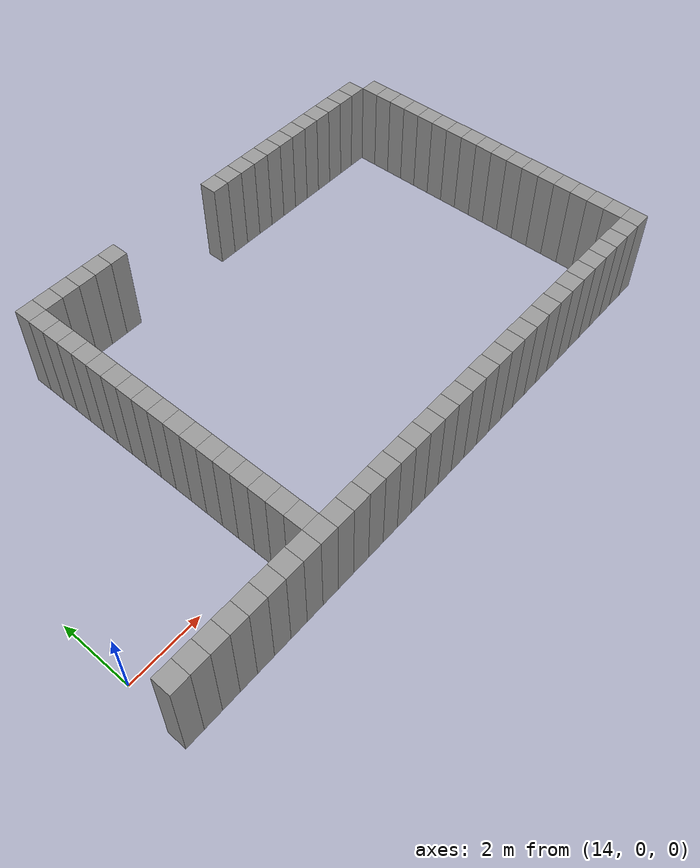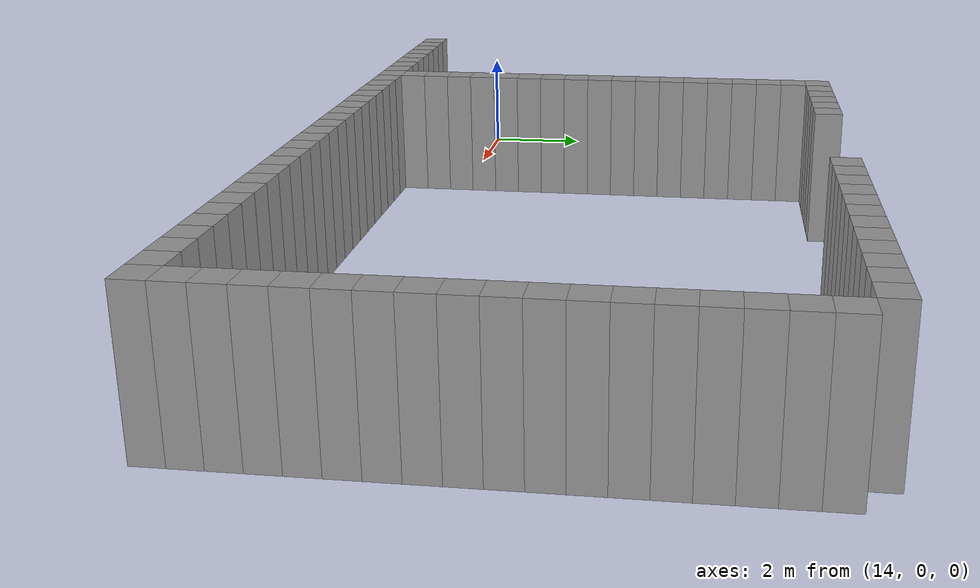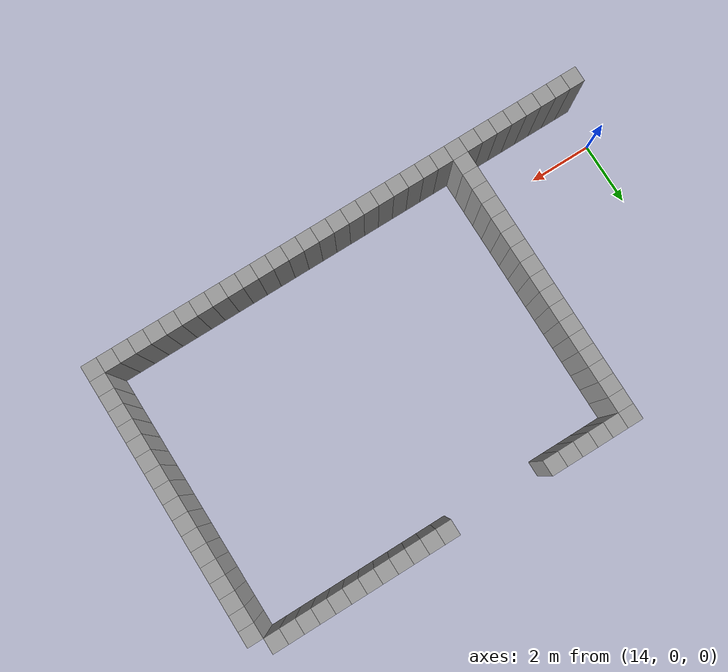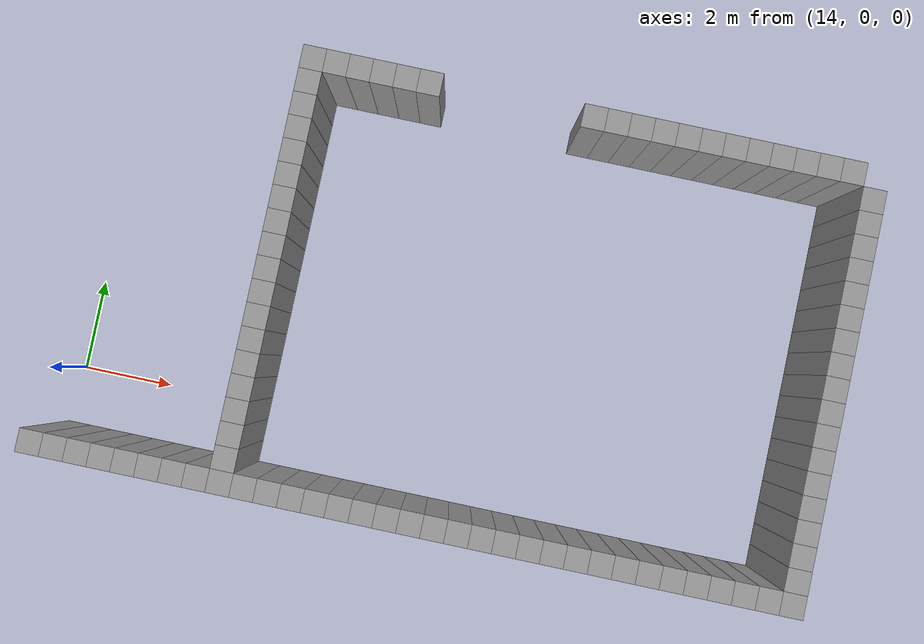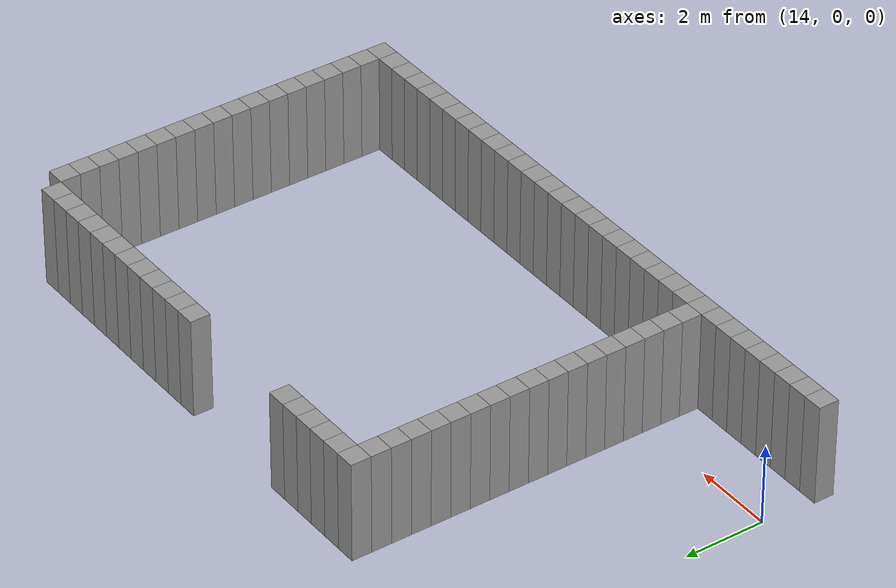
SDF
<sdf version="1.7">
 <model name="image1">
  <pose>-0.375 -1.54 0 0 -0 0</pose>
  <link name="Wall_256">
   <collision name="Wall_256_Collision">
    <geometry><box><size>0.5 0.5 2.5</size></box></geometry>
    <pose>0 0 1.25 0 -0 0</pose>
   </collision>
   <visual name="Wall_256_Visual">
    <pose>0 0 1.25 0 -0 0</pose>
    <geometry><box><size>0.5 0.5 2.5</size></box></geometry>
    <material>
     <script><uri>file://media/materials/scripts/gazebo.material</uri><name>Gazebo/Grey</name></script>
     <ambient>1 1 1 1</ambient>
    </material>
    <meta><layer>0</layer></meta>
   </visual>
   <pose>14.5 0.0 0 0 -0 0</pose>
  </link>
  <link name="Wall_259">
   <collision name="Wall_259_Collision">
    <geometry><box><size>0.5 0.5 2.5</size></box></geometry>
    <pose>0 0 1.25 0 -0 0</pose>
   </collision>
   <visual name="Wall_259_Visual">
    <pose>0 0 1.25 0 -0 0</pose>
    <geometry><box><size>0.5 0.5 2.5</size></box></geometry>
    <material>
     <script><uri>file://media/materials/scripts/gazebo.material</uri><name>Gazebo/Grey</name></script>
     <ambient>1 1 1 1</ambient>
    </material>
    <meta><layer>0</layer></meta>
   </visual>
   <pose>15.0 0.0 0 0 -0 0</pose>
  </link>
  <link name="Wall_262">
   <collision name="Wall_262_Collision">
    <geometry><box><size>0.5 0.5 2.5</size></box></geometry>
    <pose>0 0 1.25 0 -0 0</pose>
   </collision>
   <visual name="Wall_262_Visual">
    <pose>0 0 1.25 0 -0 0</pose>
    <geometry><box><size>0.5 0.5 2.5</size></box></geometry>
    <material>
     <script><uri>file://media/materials/scripts/gazebo.material</uri><name>Gazebo/Grey</name></script>
     <ambient>1 1 1 1</ambient>
    </material>
    <meta><layer>0</layer></meta>
   </visual>
   <pose>15.5 0.0 0 0 -0 0</pose>
  </link>
  <link name="Wall_265">
   <collision name="Wall_265_Collision">
    <geometry><box><size>0.5 0.5 2.5</size></box></geometry>
    <pose>0 0 1.25 0 -0 0</pose>
   </collision>
   <visual name="Wall_265_Visual">
    <pose>0 0 1.25 0 -0 0</pose>
    <geometry><box><size>0.5 0.5 2.5</size></box></geometry>
    <material>
     <script><uri>file://media/materials/scripts/gazebo.material</uri><name>Gazebo/Grey</name></script>
     <ambient>1 1 1 1</ambient>
    </material>
    <meta><layer>0</layer></meta>
   </visual>
   <pose>16.0 0.0 0 0 -0 0</pose>
  </link>
  <link name="Wall_283">
   <collision name="Wall_283_Collision">
    <geometry><box><size>0.5 0.5 2.5</size></box></geometry>
    <pose>0 0 1.25 0 -0 0</pose>
   </collision>
   <visual name="Wall_283_Visual">
    <pose>0 0 1.25 0 -0 0</pose>
    <geometry><box><size>0.5 0.5 2.5</size></box></geometry>
    <material>
     <script><uri>file://media/materials/scripts/gazebo.material</uri><name>Gazebo/Grey</name></script>
     <ambient>1 1 1 1</ambient>
    </material>
    <meta><layer>0</layer></meta>
   </visual>
   <pose>16.5 0.0 0 0 -0 0</pose>
  </link>
  <link name="Wall_287">
   <collision name="Wall_287_Collision">
    <geometry><box><size>0.5 0.5 2.5</size></box></geometry>
    <pose>0 0 1.25 0 -0 0</pose>
   </collision>
   <visual name="Wall_287_Visual">
    <pose>0 0 1.25 0 -0 0</pose>
    <geometry><box><size>0.5 0.5 2.5</size></box></geometry>
    <material>
     <script><uri>file://media/materials/scripts/gazebo.material</uri><name>Gazebo/Grey</name></script>
     <ambient>1 1 1 1</ambient>
    </material>
    <meta><layer>0</layer></meta>
   </visual>
   <pose>17.0 0.0 0 0 -0 0</pose>
  </link>
  <link name="Wall_291">
   <collision name="Wall_291_Collision">
    <geometry><box><size>0.5 0.5 2.5</size></box></geometry>
    <pose>0 0 1.25 0 -0 0</pose>
   </collision>
   <visual name="Wall_291_Visual">
    <pose>0 0 1.25 0 -0 0</pose>
    <geometry><box><size>0.5 0.5 2.5</size></box></geometry>
    <material>
     <script><uri>file://media/materials/scripts/gazebo.material</uri><name>Gazebo/Grey</name></script>
     <ambient>1 1 1 1</ambient>
    </material>
    <meta><layer>0</layer></meta>
   </visual>
   <pose>17.5 0.0 0 0 -0 0</pose>
  </link>
  <link name="Wall_295">
   <collision name="Wall_295_Collision">
    <geometry><box><size>0.5 0.5 2.5</size></box></geometry>
    <pose>0 0 1.25 0 -0 0</pose>
   </collision>
   <visual name="Wall_295_Visual">
    <pose>0 0 1.25 0 -0 0</pose>
    <geometry><box><size>0.5 0.5 2.5</size></box></geometry>
    <material>
     <script><uri>file://media/materials/scripts/gazebo.material</uri><name>Gazebo/Grey</name></script>
     <ambient>1 1 1 1</ambient>
    </material>
    <meta><layer>0</layer></meta>
   </visual>
   <pose>18.0 0.0 0 0 -0 0</pose>
  </link>
  <link name="Wall_299">
   <collision name="Wall_299_Collision">
    <geometry><box><size>0.5 0.5 2.5</size></box></geometry>
    <pose>0 0 1.25 0 -0 0</pose>
   </collision>
   <visual name="Wall_299_Visual">
    <pose>0 0 1.25 0 -0 0</pose>
    <geometry><box><size>0.5 0.5 2.5</size></box></geometry>
    <material>
     <script><uri>file://media/materials/scripts/gazebo.material</uri><name>Gazebo/Grey</name></script>
     <ambient>1 1 1 1</ambient>
    </material>
    <meta><layer>0</layer></meta>
   </visual>
   <pose>18.5 0.0 0 0 -0 0</pose>
  </link>
  <link name="Wall_300">
   <collision name="Wall_300_Collision">
    <geometry><box><size>0.5 0.5 2.5</size></box></geometry>
    <pose>0 0 1.25 0 -0 0</pose>
   </collision>
   <visual name="Wall_300_Visual">
    <pose>0 0 1.25 0 -0 0</pose>
    <geometry><box><size>0.5 0.5 2.5</size></box></geometry>
    <material>
     <script><uri>file://media/materials/scripts/gazebo.material</uri><name>Gazebo/Grey</name></script>
     <ambient>1 1 1 1</ambient>
    </material>
    <meta><layer>0</layer></meta>
   </visual>
   <pose>18.5 0.5 0 0 -0 0</pose>
  </link>
  <link name="Wall_301">
   <collision name="Wall_301_Collision">
    <geometry><box><size>0.5 0.5 2.5</size></box></geometry>
    <pose>0 0 1.25 0 -0 0</pose>
   </collision>
   <visual name="Wall_301_Visual">
    <pose>0 0 1.25 0 -0 0</pose>
    <geometry><box><size>0.5 0.5 2.5</size></box></geometry>
    <material>
     <script><uri>file://media/materials/scripts/gazebo.material</uri><name>Gazebo/Grey</name></script>
     <ambient>1 1 1 1</ambient>
    </material>
    <meta><layer>0</layer></meta>
   </visual>
   <pose>18.5 1.0 0 0 -0 0</pose>
  </link>
  <link name="Wall_302">
   <collision name="Wall_302_Collision">
    <geometry><box><size>0.5 0.5 2.5</size></box></geometry>
    <pose>0 0 1.25 0 -0 0</pose>
   </collision>
   <visual name="Wall_302_Visual">
    <pose>0 0 1.25 0 -0 0</pose>
    <geometry><box><size>0.5 0.5 2.5</size></box></geometry>
    <material>
     <script><uri>file://media/materials/scripts/gazebo.material</uri><name>Gazebo/Grey</name></script>
     <ambient>1 1 1 1</ambient>
    </material>
    <meta><layer>0</layer></meta>
   </visual>
   <pose>18.5 1.5 0 0 -0 0</pose>
  </link>
  <link name="Wall_303">
   <collision name="Wall_303_Collision">
    <geometry><box><size>0.5 0.5 2.5</size></box></geometry>
    <pose>0 0 1.25 0 -0 0</pose>
   </collision>
   <visual name="Wall_303_Visual">
    <pose>0 0 1.25 0 -0 0</pose>
    <geometry><box><size>0.5 0.5 2.5</size></box></geometry>
    <material>
     <script><uri>file://media/materials/scripts/gazebo.material</uri><name>Gazebo/Grey</name></script>
     <ambient>1 1 1 1</ambient>
    </material>
    <meta><layer>0</layer></meta>
   </visual>
   <pose>18.5 2.0 0 0 -0 0</pose>
  </link>
  <link name="Wall_304">
   <collision name="Wall_304_Collision">
    <geometry><box><size>0.5 0.5 2.5</size></box></geometry>
    <pose>0 0 1.25 0 -0 0</pose>
   </collision>
   <visual name="Wall_304_Visual">
    <pose>0 0 1.25 0 -0 0</pose>
    <geometry><box><size>0.5 0.5 2.5</size></box></geometry>
    <material>
     <script><uri>file://media/materials/scripts/gazebo.material</uri><name>Gazebo/Grey</name></script>
     <ambient>1 1 1 1</ambient>
    </material>
    <meta><layer>0</layer></meta>
   </visual>
   <pose>18.5 2.5 0 0 -0 0</pose>
  </link>
  <link name="Wall_305">
   <collision name="Wall_305_Collision">
    <geometry><box><size>0.5 0.5 2.5</size></box></geometry>
    <pose>0 0 1.25 0 -0 0</pose>
   </collision>
   <visual name="Wall_305_Visual">
    <pose>0 0 1.25 0 -0 0</pose>
    <geometry><box><size>0.5 0.5 2.5</size></box></geometry>
    <material>
     <script><uri>file://media/materials/scripts/gazebo.material</uri><name>Gazebo/Grey</name></script>
     <ambient>1 1 1 1</ambient>
    </material>
    <meta><layer>0</layer></meta>
   </visual>
   <pose>18.5 3.0 0 0 -0 0</pose>
  </link>
  <link name="Wall_306">
   <collision name="Wall_306_Collision">
    <geometry><box><size>0.5 0.5 2.5</size></box></geometry>
    <pose>0 0 1.25 0 -0 0</pose>
   </collision>
   <visual name="Wall_306_Visual">
    <pose>0 0 1.25 0 -0 0</pose>
    <geometry><box><size>0.5 0.5 2.5</size></box></geometry>
    <material>
     <script><uri>file://media/materials/scripts/gazebo.material</uri><name>Gazebo/Grey</name></script>
     <ambient>1 1 1 1</ambient>
    </material>
    <meta><layer>0</layer></meta>
   </visual>
   <pose>18.5 3.5 0 0 -0 0</pose>
  </link>
  <link name="Wall_307">
   <collision name="Wall_307_Collision">
    <geometry><box><size>0.5 0.5 2.5</size></box></geometry>
    <pose>0 0 1.25 0 -0 0</pose>
   </collision>
   <visual name="Wall_307_Visual">
    <pose>0 0 1.25 0 -0 0</pose>
    <geometry><box><size>0.5 0.5 2.5</size></box></geometry>
    <material>
     <script><uri>file://media/materials/scripts/gazebo.material</uri><name>Gazebo/Grey</name></script>
     <ambient>1 1 1 1</ambient>
    </material>
    <meta><layer>0</layer></meta>
   </visual>
   <pose>18.5 4.0 0 0 -0 0</pose>
  </link>
  <link name="Wall_308">
   <collision name="Wall_308_Collision">
    <geometry><box><size>0.5 0.5 2.5</size></box></geometry>
    <pose>0 0 1.25 0 -0 0</pose>
   </collision>
   <visual name="Wall_308_Visual">
    <pose>0 0 1.25 0 -0 0</pose>
    <geometry><box><size>0.5 0.5 2.5</size></box></geometry>
    <material>
     <script><uri>file://media/materials/scripts/gazebo.material</uri><name>Gazebo/Grey</name></script>
     <ambient>1 1 1 1</ambient>
    </material>
    <meta><layer>0</layer></meta>
   </visual>
   <pose>18.5 4.5 0 0 -0 0</pose>
  </link>
  <link name="Wall_309">
   <collision name="Wall_309_Collision">
    <geometry><box><size>0.5 0.5 2.5</size></box></geometry>
    <pose>0 0 1.25 0 -0 0</pose>
   </collision>
   <visual name="Wall_309_Visual">
    <pose>0 0 1.25 0 -0 0</pose>
    <geometry><box><size>0.5 0.5 2.5</size></box></geometry>
    <material>
     <script><uri>file://media/materials/scripts/gazebo.material</uri><name>Gazebo/Grey</name></script>
     <ambient>1 1 1 1</ambient>
    </material>
    <meta><layer>0</layer></meta>
   </visual>
   <pose>18.5 5.0 0 0 -0 0</pose>
  </link>
  <link name="Wall_310">
   <collision name="Wall_310_Collision">
    <geometry><box><size>0.5 0.5 2.5</size></box></geometry>
    <pose>0 0 1.25 0 -0 0</pose>
   </collision>
   <visual name="Wall_310_Visual">
    <pose>0 0 1.25 0 -0 0</pose>
    <geometry><box><size>0.5 0.5 2.5</size></box></geometry>
    <material>
     <script><uri>file://media/materials/scripts/gazebo.material</uri><name>Gazebo/Grey</name></script>
     <ambient>1 1 1 1</ambient>
    </material>
    <meta><layer>0</layer></meta>
   </visual>
   <pose>18.5 5.5 0 0 -0 0</pose>
  </link>
  <link name="Wall_311">
   <collision name="Wall_311_Collision">
    <geometry><box><size>0.5 0.5 2.5</size></box></geometry>
    <pose>0 0 1.25 0 -0 0</pose>
   </collision>
   <visual name="Wall_311_Visual">
    <pose>0 0 1.25 0 -0 0</pose>
    <geometry><box><size>0.5 0.5 2.5</size></box></geometry>
    <material>
     <script><uri>file://media/materials/scripts/gazebo.material</uri><name>Gazebo/Grey</name></script>
     <ambient>1 1 1 1</ambient>
    </material>
    <meta><layer>0</layer></meta>
   </visual>
   <pose>18.5 6.0 0 0 -0 0</pose>
  </link>
  <link name="Wall_312">
   <collision name="Wall_312_Collision">
    <geometry><box><size>0.5 0.5 2.5</size></box></geometry>
    <pose>0 0 1.25 0 -0 0</pose>
   </collision>
   <visual name="Wall_312_Visual">
    <pose>0 0 1.25 0 -0 0</pose>
    <geometry><box><size>0.5 0.5 2.5</size></box></geometry>
    <material>
     <script><uri>file://media/materials/scripts/gazebo.material</uri><name>Gazebo/Grey</name></script>
     <ambient>1 1 1 1</ambient>
    </material>
    <meta><layer>0</layer></meta>
   </visual>
   <pose>18.5 6.5 0 0 -0 0</pose>
  </link>
  <link name="Wall_313">
   <collision name="Wall_313_Collision">
    <geometry><box><size>0.5 0.5 2.5</size></box></geometry>
    <pose>0 0 1.25 0 -0 0</pose>
   </collision>
   <visual name="Wall_313_Visual">
    <pose>0 0 1.25 0 -0 0</pose>
    <geometry><box><size>0.5 0.5 2.5</size></box></geometry>
    <material>
     <script><uri>file://media/materials/scripts/gazebo.material</uri><name>Gazebo/Grey</name></script>
     <ambient>1 1 1 1</ambient>
    </material>
    <meta><layer>0</layer></meta>
   </visual>
   <pose>18.5 7.0 0 0 -0 0</pose>
  </link>
  <link name="Wall_314">
   <collision name="Wall_314_Collision">
    <geometry><box><size>0.5 0.5 2.5</size></box></geometry>
    <pose>0 0 1.25 0 -0 0</pose>
   </collision>
   <visual name="Wall_314_Visual">
    <pose>0 0 1.25 0 -0 0</pose>
    <geometry><box><size>0.5 0.5 2.5</size></box></geometry>
    <material>
     <script><uri>file://media/materials/scripts/gazebo.material</uri><name>Gazebo/Grey</name></script>
     <ambient>1 1 1 1</ambient>
    </material>
    <meta><layer>0</layer></meta>
   </visual>
   <pose>18.5 7.5 0 0 -0 0</pose>
  </link>
  <link name="Wall_315">
   <collision name="Wall_315_Collision">
    <geometry><box><size>0.5 0.5 2.5</size></box></geometry>
    <pose>0 0 1.25 0 -0 0</pose>
   </collision>
   <visual name="Wall_315_Visual">
    <pose>0 0 1.25 0 -0 0</pose>
    <geometry><box><size>0.5 0.5 2.5</size></box></geometry>
    <material>
     <script><uri>file://media/materials/scripts/gazebo.material</uri><name>Gazebo/Grey</name></script>
     <ambient>1 1 1 1</ambient>
    </material>
    <meta><layer>0</layer></meta>
   </visual>
   <pose>18.5 8.0 0 0 -0 0</pose>
  </link>
  <link name="Wall_316">
   <collision name="Wall_316_Collision">
    <geometry><box><size>0.5 0.5 2.5</size></box></geometry>
    <pose>0 0 1.25 0 -0 0</pose>
   </collision>
   <visual name="Wall_316_Visual">
    <pose>0 0 1.25 0 -0 0</pose>
    <geometry><box><size>0.5 0.5 2.5</size></box></geometry>
    <material>
     <script><uri>file://media/materials/scripts/gazebo.material</uri><name>Gazebo/Grey</name></script>
     <ambient>1 1 1 1</ambient>
    </material>
    <meta><layer>0</layer></meta>
   </visual>
   <pose>18.5 8.5 0 0 -0 0</pose>
  </link>
  <link name="Wall_317">
   <collision name="Wall_317_Collision">
    <geometry><box><size>0.5 0.5 2.5</size></box></geometry>
    <pose>0 0 1.25 0 -0 0</pose>
   </collision>
   <visual name="Wall_317_Visual">
    <pose>0 0 1.25 0 -0 0</pose>
    <geometry><box><size>0.5 0.5 2.5</size></box></geometry>
    <material>
     <script><uri>file://media/materials/scripts/gazebo.material</uri><name>Gazebo/Grey</name></script>
     <ambient>1 1 1 1</ambient>
    </material>
    <meta><layer>0</layer></meta>
   </visual>
   <pose>18.5 9.0 0 0 -0 0</pose>
  </link>
  <link name="Wall_321">
   <collision name="Wall_321_Collision">
    <geometry><box><size>0.5 0.5 2.5</size></box></geometry>
    <pose>0 0 1.25 0 -0 0</pose>
   </collision>
   <visual name="Wall_321_Visual">
    <pose>0 0 1.25 0 -0 0</pose>
    <geometry><box><size>0.5 0.5 2.5</size></box></geometry>
    <material>
     <script><uri>file://media/materials/scripts/gazebo.material</uri><name>Gazebo/Grey</name></script>
     <ambient>1 1 1 1</ambient>
    </material>
    <meta><layer>0</layer></meta>
   </visual>
   <pose>19.0 0.0 0 0 -0 0</pose>
  </link>
  <link name="Wall_322">
   <collision name="Wall_322_Collision">
    <geometry><box><size>0.5 0.5 2.5</size></box></geometry>
    <pose>0 0 1.25 0 -0 0</pose>
   </collision>
   <visual name="Wall_322_Visual">
    <pose>0 0 1.25 0 -0 0</pose>
    <geometry><box><size>0.5 0.5 2.5</size></box></geometry>
    <material>
     <script><uri>file://media/materials/scripts/gazebo.material</uri><name>Gazebo/Grey</name></script>
     <ambient>1 1 1 1</ambient>
    </material>
    <meta><layer>0</layer></meta>
   </visual>
   <pose>19.0 9.0 0 0 -0 0</pose>
  </link>
  <link name="Wall_326">
   <collision name="Wall_326_Collision">
    <geometry><box><size>0.5 0.5 2.5</size></box></geometry>
    <pose>0 0 1.25 0 -0 0</pose>
   </collision>
   <visual name="Wall_326_Visual">
    <pose>0 0 1.25 0 -0 0</pose>
    <geometry><box><size>0.5 0.5 2.5</size></box></geometry>
    <material>
     <script><uri>file://media/materials/scripts/gazebo.material</uri><name>Gazebo/Grey</name></script>
     <ambient>1 1 1 1</ambient>
    </material>
    <meta><layer>0</layer></meta>
   </visual>
   <pose>19.5 0.0 0 0 -0 0</pose>
  </link>
  <link name="Wall_327">
   <collision name="Wall_327_Collision">
    <geometry><box><size>0.5 0.5 2.5</size></box></geometry>
    <pose>0 0 1.25 0 -0 0</pose>
   </collision>
   <visual name="Wall_327_Visual">
    <pose>0 0 1.25 0 -0 0</pose>
    <geometry><box><size>0.5 0.5 2.5</size></box></geometry>
    <material>
     <script><uri>file://media/materials/scripts/gazebo.material</uri><name>Gazebo/Grey</name></script>
     <ambient>1 1 1 1</ambient>
    </material>
    <meta><layer>0</layer></meta>
   </visual>
   <pose>19.5 9.0 0 0 -0 0</pose>
  </link>
  <link name="Wall_341">
   <collision name="Wall_341_Collision">
    <geometry><box><size>0.5 0.5 2.5</size></box></geometry>
    <pose>0 0 1.25 0 -0 0</pose>
   </collision>
   <visual name="Wall_341_Visual">
    <pose>0 0 1.25 0 -0 0</pose>
    <geometry><box><size>0.5 0.5 2.5</size></box></geometry>
    <material>
     <script><uri>file://media/materials/scripts/gazebo.material</uri><name>Gazebo/Grey</name></script>
     <ambient>1 1 1 1</ambient>
    </material>
    <meta><layer>0</layer></meta>
   </visual>
   <pose>20.0 0.0 0 0 -0 0</pose>
  </link>
  <link name="Wall_342">
   <collision name="Wall_342_Collision">
    <geometry><box><size>0.5 0.5 2.5</size></box></geometry>
    <pose>0 0 1.25 0 -0 0</pose>
   </collision>
   <visual name="Wall_342_Visual">
    <pose>0 0 1.25 0 -0 0</pose>
    <geometry><box><size>0.5 0.5 2.5</size></box></geometry>
    <material>
     <script><uri>file://media/materials/scripts/gazebo.material</uri><name>Gazebo/Grey</name></script>
     <ambient>1 1 1 1</ambient>
    </material>
    <meta><layer>0</layer></meta>
   </visual>
   <pose>20.0 9.0 0 0 -0 0</pose>
  </link>
  <link name="Wall_344">
   <collision name="Wall_344_Collision">
    <geometry><box><size>0.5 0.5 2.5</size></box></geometry>
    <pose>0 0 1.25 0 -0 0</pose>
   </collision>
   <visual name="Wall_344_Visual">
    <pose>0 0 1.25 0 -0 0</pose>
    <geometry><box><size>0.5 0.5 2.5</size></box></geometry>
    <material>
     <script><uri>file://media/materials/scripts/gazebo.material</uri><name>Gazebo/Grey</name></script>
     <ambient>1 1 1 1</ambient>
    </material>
    <meta><layer>0</layer></meta>
   </visual>
   <pose>20.5 0.0 0 0 -0 0</pose>
  </link>
  <link name="Wall_345">
   <collision name="Wall_345_Collision">
    <geometry><box><size>0.5 0.5 2.5</size></box></geometry>
    <pose>0 0 1.25 0 -0 0</pose>
   </collision>
   <visual name="Wall_345_Visual">
    <pose>0 0 1.25 0 -0 0</pose>
    <geometry><box><size>0.5 0.5 2.5</size></box></geometry>
    <material>
     <script><uri>file://media/materials/scripts/gazebo.material</uri><name>Gazebo/Grey</name></script>
     <ambient>1 1 1 1</ambient>
    </material>
    <meta><layer>0</layer></meta>
   </visual>
   <pose>20.5 9.0 0 0 -0 0</pose>
  </link>
  <link name="Wall_347">
   <collision name="Wall_347_Collision">
    <geometry><box><size>0.5 0.5 2.5</size></box></geometry>
    <pose>0 0 1.25 0 -0 0</pose>
   </collision>
   <visual name="Wall_347_Visual">
    <pose>0 0 1.25 0 -0 0</pose>
    <geometry><box><size>0.5 0.5 2.5</size></box></geometry>
    <material>
     <script><uri>file://media/materials/scripts/gazebo.material</uri><name>Gazebo/Grey</name></script>
     <ambient>1 1 1 1</ambient>
    </material>
    <meta><layer>0</layer></meta>
   </visual>
   <pose>21.0 0.0 0 0 -0 0</pose>
  </link>
  <link name="Wall_348">
   <collision name="Wall_348_Collision">
    <geometry><box><size>0.5 0.5 2.5</size></box></geometry>
    <pose>0 0 1.25 0 -0 0</pose>
   </collision>
   <visual name="Wall_348_Visual">
    <pose>0 0 1.25 0 -0 0</pose>
    <geometry><box><size>0.5 0.5 2.5</size></box></geometry>
    <material>
     <script><uri>file://media/materials/scripts/gazebo.material</uri><name>Gazebo/Grey</name></script>
     <ambient>1 1 1 1</ambient>
    </material>
    <meta><layer>0</layer></meta>
   </visual>
   <pose>21.0 9.0 0 0 -0 0</pose>
  </link>
  <link name="Wall_350">
   <collision name="Wall_350_Collision">
    <geometry><box><size>0.5 0.5 2.5</size></box></geometry>
    <pose>0 0 1.25 0 -0 0</pose>
   </collision>
   <visual name="Wall_350_Visual">
    <pose>0 0 1.25 0 -0 0</pose>
    <geometry><box><size>0.5 0.5 2.5</size></box></geometry>
    <material>
     <script><uri>file://media/materials/scripts/gazebo.material</uri><name>Gazebo/Grey</name></script>
     <ambient>1 1 1 1</ambient>
    </material>
    <meta><layer>0</layer></meta>
   </visual>
   <pose>21.5 0.0 0 0 -0 0</pose>
  </link>
  <link name="Wall_352">
   <collision name="Wall_352_Collision">
    <geometry><box><size>0.5 0.5 2.5</size></box></geometry>
    <pose>0 0 1.25 0 -0 0</pose>
   </collision>
   <visual name="Wall_352_Visual">
    <pose>0 0 1.25 0 -0 0</pose>
    <geometry><box><size>0.5 0.5 2.5</size></box></geometry>
    <material>
     <script><uri>file://media/materials/scripts/gazebo.material</uri><name>Gazebo/Grey</name></script>
     <ambient>1 1 1 1</ambient>
    </material>
    <meta><layer>0</layer></meta>
   </visual>
   <pose>22.0 0.0 0 0 -0 0</pose>
  </link>
  <link name="Wall_354">
   <collision name="Wall_354_Collision">
    <geometry><box><size>0.5 0.5 2.5</size></box></geometry>
    <pose>0 0 1.25 0 -0 0</pose>
   </collision>
   <visual name="Wall_354_Visual">
    <pose>0 0 1.25 0 -0 0</pose>
    <geometry><box><size>0.5 0.5 2.5</size></box></geometry>
    <material>
     <script><uri>file://media/materials/scripts/gazebo.material</uri><name>Gazebo/Grey</name></script>
     <ambient>1 1 1 1</ambient>
    </material>
    <meta><layer>0</layer></meta>
   </visual>
   <pose>22.5 0.0 0 0 -0 0</pose>
  </link>
  <link name="Wall_357">
   <collision name="Wall_357_Collision">
    <geometry><box><size>0.5 0.5 2.5</size></box></geometry>
    <pose>0 0 1.25 0 -0 0</pose>
   </collision>
   <visual name="Wall_357_Visual">
    <pose>0 0 1.25 0 -0 0</pose>
    <geometry><box><size>0.5 0.5 2.5</size></box></geometry>
    <material>
     <script><uri>file://media/materials/scripts/gazebo.material</uri><name>Gazebo/Grey</name></script>
     <ambient>1 1 1 1</ambient>
    </material>
    <meta><layer>0</layer></meta>
   </visual>
   <pose>23.0 0.0 0 0 -0 0</pose>
  </link>
  <link name="Wall_360">
   <collision name="Wall_360_Collision">
    <geometry><box><size>0.5 0.5 2.5</size></box></geometry>
    <pose>0 0 1.25 0 -0 0</pose>
   </collision>
   <visual name="Wall_360_Visual">
    <pose>0 0 1.25 0 -0 0</pose>
    <geometry><box><size>0.5 0.5 2.5</size></box></geometry>
    <material>
     <script><uri>file://media/materials/scripts/gazebo.material</uri><name>Gazebo/Grey</name></script>
     <ambient>1 1 1 1</ambient>
    </material>
    <meta><layer>0</layer></meta>
   </visual>
   <pose>23.5 0.0 0 0 -0 0</pose>
  </link>
  <link name="Wall_363">
   <collision name="Wall_363_Collision">
    <geometry><box><size>0.5 0.5 2.5</size></box></geometry>
    <pose>0 0 1.25 0 -0 0</pose>
   </collision>
   <visual name="Wall_363_Visual">
    <pose>0 0 1.25 0 -0 0</pose>
    <geometry><box><size>0.5 0.5 2.5</size></box></geometry>
    <material>
     <script><uri>file://media/materials/scripts/gazebo.material</uri><name>Gazebo/Grey</name></script>
     <ambient>1 1 1 1</ambient>
    </material>
    <meta><layer>0</layer></meta>
   </visual>
   <pose>24.0 0.0 0 0 -0 0</pose>
  </link>
  <link name="Wall_370">
   <collision name="Wall_370_Collision">
    <geometry><box><size>0.5 0.5 2.5</size></box></geometry>
    <pose>0 0 1.25 0 -0 0</pose>
   </collision>
   <visual name="Wall_370_Visual">
    <pose>0 0 1.25 0 -0 0</pose>
    <geometry><box><size>0.5 0.5 2.5</size></box></geometry>
    <material>
     <script><uri>file://media/materials/scripts/gazebo.material</uri><name>Gazebo/Grey</name></script>
     <ambient>1 1 1 1</ambient>
    </material>
    <meta><layer>0</layer></meta>
   </visual>
   <pose>24.5 0.0 0 0 -0 0</pose>
  </link>
  <link name="Wall_371">
   <collision name="Wall_371_Collision">
    <geometry><box><size>0.5 0.5 2.5</size></box></geometry>
    <pose>0 0 1.25 0 -0 0</pose>
   </collision>
   <visual name="Wall_371_Visual">
    <pose>0 0 1.25 0 -0 0</pose>
    <geometry><box><size>0.5 0.5 2.5</size></box></geometry>
    <material>
     <script><uri>file://media/materials/scripts/gazebo.material</uri><name>Gazebo/Grey</name></script>
     <ambient>1 1 1 1</ambient>
    </material>
    <meta><layer>0</layer></meta>
   </visual>
   <pose>24.5 9.0 0 0 -0 0</pose>
  </link>
  <link name="Wall_390">
   <collision name="Wall_390_Collision">
    <geometry><box><size>0.5 0.5 2.5</size></box></geometry>
    <pose>0 0 1.25 0 -0 0</pose>
   </collision>
   <visual name="Wall_390_Visual">
    <pose>0 0 1.25 0 -0 0</pose>
    <geometry><box><size>0.5 0.5 2.5</size></box></geometry>
    <material>
     <script><uri>file://media/materials/scripts/gazebo.material</uri><name>Gazebo/Grey</name></script>
     <ambient>1 1 1 1</ambient>
    </material>
    <meta><layer>0</layer></meta>
   </visual>
   <pose>25.0 0.0 0 0 -0 0</pose>
  </link>
  <link name="Wall_391">
   <collision name="Wall_391_Collision">
    <geometry><box><size>0.5 0.5 2.5</size></box></geometry>
    <pose>0 0 1.25 0 -0 0</pose>
   </collision>
   <visual name="Wall_391_Visual">
    <pose>0 0 1.25 0 -0 0</pose>
    <geometry><box><size>0.5 0.5 2.5</size></box></geometry>
    <material>
     <script><uri>file://media/materials/scripts/gazebo.material</uri><name>Gazebo/Grey</name></script>
     <ambient>1 1 1 1</ambient>
    </material>
    <meta><layer>0</layer></meta>
   </visual>
   <pose>25.0 9.0 0 0 -0 0</pose>
  </link>
  <link name="Wall_396">
   <collision name="Wall_396_Collision">
    <geometry><box><size>0.5 0.5 2.5</size></box></geometry>
    <pose>0 0 1.25 0 -0 0</pose>
   </collision>
   <visual name="Wall_396_Visual">
    <pose>0 0 1.25 0 -0 0</pose>
    <geometry><box><size>0.5 0.5 2.5</size></box></geometry>
    <material>
     <script><uri>file://media/materials/scripts/gazebo.material</uri><name>Gazebo/Grey</name></script>
     <ambient>1 1 1 1</ambient>
    </material>
    <meta><layer>0</layer></meta>
   </visual>
   <pose>25.5 0.0 0 0 -0 0</pose>
  </link>
  <link name="Wall_397">
   <collision name="Wall_397_Collision">
    <geometry><box><size>0.5 0.5 2.5</size></box></geometry>
    <pose>0 0 1.25 0 -0 0</pose>
   </collision>
   <visual name="Wall_397_Visual">
    <pose>0 0 1.25 0 -0 0</pose>
    <geometry><box><size>0.5 0.5 2.5</size></box></geometry>
    <material>
     <script><uri>file://media/materials/scripts/gazebo.material</uri><name>Gazebo/Grey</name></script>
     <ambient>1 1 1 1</ambient>
    </material>
    <meta><layer>0</layer></meta>
   </visual>
   <pose>25.5 9.0 0 0 -0 0</pose>
  </link>
  <link name="Wall_402">
   <collision name="Wall_402_Collision">
    <geometry><box><size>0.5 0.5 2.5</size></box></geometry>
    <pose>0 0 1.25 0 -0 0</pose>
   </collision>
   <visual name="Wall_402_Visual">
    <pose>0 0 1.25 0 -0 0</pose>
    <geometry><box><size>0.5 0.5 2.5</size></box></geometry>
    <material>
     <script><uri>file://media/materials/scripts/gazebo.material</uri><name>Gazebo/Grey</name></script>
     <ambient>1 1 1 1</ambient>
    </material>
    <meta><layer>0</layer></meta>
   </visual>
   <pose>26.0 0.0 0 0 -0 0</pose>
  </link>
  <link name="Wall_403">
   <collision name="Wall_403_Collision">
    <geometry><box><size>0.5 0.5 2.5</size></box></geometry>
    <pose>0 0 1.25 0 -0 0</pose>
   </collision>
   <visual name="Wall_403_Visual">
    <pose>0 0 1.25 0 -0 0</pose>
    <geometry><box><size>0.5 0.5 2.5</size></box></geometry>
    <material>
     <script><uri>file://media/materials/scripts/gazebo.material</uri><name>Gazebo/Grey</name></script>
     <ambient>1 1 1 1</ambient>
    </material>
    <meta><layer>0</layer></meta>
   </visual>
   <pose>26.0 9.0 0 0 -0 0</pose>
  </link>
  <link name="Wall_407">
   <collision name="Wall_407_Collision">
    <geometry><box><size>0.5 0.5 2.5</size></box></geometry>
    <pose>0 0 1.25 0 -0 0</pose>
   </collision>
   <visual name="Wall_407_Visual">
    <pose>0 0 1.25 0 -0 0</pose>
    <geometry><box><size>0.5 0.5 2.5</size></box></geometry>
    <material>
     <script><uri>file://media/materials/scripts/gazebo.material</uri><name>Gazebo/Grey</name></script>
     <ambient>1 1 1 1</ambient>
    </material>
    <meta><layer>0</layer></meta>
   </visual>
   <pose>26.5 0.0 0 0 -0 0</pose>
  </link>
  <link name="Wall_408">
   <collision name="Wall_408_Collision">
    <geometry><box><size>0.5 0.5 2.5</size></box></geometry>
    <pose>0 0 1.25 0 -0 0</pose>
   </collision>
   <visual name="Wall_408_Visual">
    <pose>0 0 1.25 0 -0 0</pose>
    <geometry><box><size>0.5 0.5 2.5</size></box></geometry>
    <material>
     <script><uri>file://media/materials/scripts/gazebo.material</uri><name>Gazebo/Grey</name></script>
     <ambient>1 1 1 1</ambient>
    </material>
    <meta><layer>0</layer></meta>
   </visual>
   <pose>26.5 9.0 0 0 -0 0</pose>
  </link>
  <link name="Wall_412">
   <collision name="Wall_412_Collision">
    <geometry><box><size>0.5 0.5 2.5</size></box></geometry>
    <pose>0 0 1.25 0 -0 0</pose>
   </collision>
   <visual name="Wall_412_Visual">
    <pose>0 0 1.25 0 -0 0</pose>
    <geometry><box><size>0.5 0.5 2.5</size></box></geometry>
    <material>
     <script><uri>file://media/materials/scripts/gazebo.material</uri><name>Gazebo/Grey</name></script>
     <ambient>1 1 1 1</ambient>
    </material>
    <meta><layer>0</layer></meta>
   </visual>
   <pose>27.0 0.0 0 0 -0 0</pose>
  </link>
  <link name="Wall_413">
   <collision name="Wall_413_Collision">
    <geometry><box><size>0.5 0.5 2.5</size></box></geometry>
    <pose>0 0 1.25 0 -0 0</pose>
   </collision>
   <visual name="Wall_413_Visual">
    <pose>0 0 1.25 0 -0 0</pose>
    <geometry><box><size>0.5 0.5 2.5</size></box></geometry>
    <material>
     <script><uri>file://media/materials/scripts/gazebo.material</uri><name>Gazebo/Grey</name></script>
     <ambient>1 1 1 1</ambient>
    </material>
    <meta><layer>0</layer></meta>
   </visual>
   <pose>27.0 9.0 0 0 -0 0</pose>
  </link>
  <link name="Wall_417">
   <collision name="Wall_417_Collision">
    <geometry><box><size>0.5 0.5 2.5</size></box></geometry>
    <pose>0 0 1.25 0 -0 0</pose>
   </collision>
   <visual name="Wall_417_Visual">
    <pose>0 0 1.25 0 -0 0</pose>
    <geometry><box><size>0.5 0.5 2.5</size></box></geometry>
    <material>
     <script><uri>file://media/materials/scripts/gazebo.material</uri><name>Gazebo/Grey</name></script>
     <ambient>1 1 1 1</ambient>
    </material>
    <meta><layer>0</layer></meta>
   </visual>
   <pose>27.5 0.0 0 0 -0 0</pose>
  </link>
  <link name="Wall_418">
   <collision name="Wall_418_Collision">
    <geometry><box><size>0.5 0.5 2.5</size></box></geometry>
    <pose>0 0 1.25 0 -0 0</pose>
   </collision>
   <visual name="Wall_418_Visual">
    <pose>0 0 1.25 0 -0 0</pose>
    <geometry><box><size>0.5 0.5 2.5</size></box></geometry>
    <material>
     <script><uri>file://media/materials/scripts/gazebo.material</uri><name>Gazebo/Grey</name></script>
     <ambient>1 1 1 1</ambient>
    </material>
    <meta><layer>0</layer></meta>
   </visual>
   <pose>27.5 9.0 0 0 -0 0</pose>
  </link>
  <link name="Wall_422">
   <collision name="Wall_422_Collision">
    <geometry><box><size>0.5 0.5 2.5</size></box></geometry>
    <pose>0 0 1.25 0 -0 0</pose>
   </collision>
   <visual name="Wall_422_Visual">
    <pose>0 0 1.25 0 -0 0</pose>
    <geometry><box><size>0.5 0.5 2.5</size></box></geometry>
    <material>
     <script><uri>file://media/materials/scripts/gazebo.material</uri><name>Gazebo/Grey</name></script>
     <ambient>1 1 1 1</ambient>
    </material>
    <meta><layer>0</layer></meta>
   </visual>
   <pose>28.0 0.0 0 0 -0 0</pose>
  </link>
  <link name="Wall_423">
   <collision name="Wall_423_Collision">
    <geometry><box><size>0.5 0.5 2.5</size></box></geometry>
    <pose>0 0 1.25 0 -0 0</pose>
   </collision>
   <visual name="Wall_423_Visual">
    <pose>0 0 1.25 0 -0 0</pose>
    <geometry><box><size>0.5 0.5 2.5</size></box></geometry>
    <material>
     <script><uri>file://media/materials/scripts/gazebo.material</uri><name>Gazebo/Grey</name></script>
     <ambient>1 1 1 1</ambient>
    </material>
    <meta><layer>0</layer></meta>
   </visual>
   <pose>28.0 9.0 0 0 -0 0</pose>
  </link>
  <link name="Wall_427">
   <collision name="Wall_427_Collision">
    <geometry><box><size>0.5 0.5 2.5</size></box></geometry>
    <pose>0 0 1.25 0 -0 0</pose>
   </collision>
   <visual name="Wall_427_Visual">
    <pose>0 0 1.25 0 -0 0</pose>
    <geometry><box><size>0.5 0.5 2.5</size></box></geometry>
    <material>
     <script><uri>file://media/materials/scripts/gazebo.material</uri><name>Gazebo/Grey</name></script>
     <ambient>1 1 1 1</ambient>
    </material>
    <meta><layer>0</layer></meta>
   </visual>
   <pose>28.5 0.0 0 0 -0 0</pose>
  </link>
  <link name="Wall_428">
   <collision name="Wall_428_Collision">
    <geometry><box><size>0.5 0.5 2.5</size></box></geometry>
    <pose>0 0 1.25 0 -0 0</pose>
   </collision>
   <visual name="Wall_428_Visual">
    <pose>0 0 1.25 0 -0 0</pose>
    <geometry><box><size>0.5 0.5 2.5</size></box></geometry>
    <material>
     <script><uri>file://media/materials/scripts/gazebo.material</uri><name>Gazebo/Grey</name></script>
     <ambient>1 1 1 1</ambient>
    </material>
    <meta><layer>0</layer></meta>
   </visual>
   <pose>28.5 9.0 0 0 -0 0</pose>
  </link>
  <link name="Wall_432">
   <collision name="Wall_432_Collision">
    <geometry><box><size>0.5 0.5 2.5</size></box></geometry>
    <pose>0 0 1.25 0 -0 0</pose>
   </collision>
   <visual name="Wall_432_Visual">
    <pose>0 0 1.25 0 -0 0</pose>
    <geometry><box><size>0.5 0.5 2.5</size></box></geometry>
    <material>
     <script><uri>file://media/materials/scripts/gazebo.material</uri><name>Gazebo/Grey</name></script>
     <ambient>1 1 1 1</ambient>
    </material>
    <meta><layer>0</layer></meta>
   </visual>
   <pose>29.0 0.0 0 0 -0 0</pose>
  </link>
  <link name="Wall_433">
   <collision name="Wall_433_Collision">
    <geometry><box><size>0.5 0.5 2.5</size></box></geometry>
    <pose>0 0 1.25 0 -0 0</pose>
   </collision>
   <visual name="Wall_433_Visual">
    <pose>0 0 1.25 0 -0 0</pose>
    <geometry><box><size>0.5 0.5 2.5</size></box></geometry>
    <material>
     <script><uri>file://media/materials/scripts/gazebo.material</uri><name>Gazebo/Grey</name></script>
     <ambient>1 1 1 1</ambient>
    </material>
    <meta><layer>0</layer></meta>
   </visual>
   <pose>29.0 9.0 0 0 -0 0</pose>
  </link>
  <link name="Wall_437">
   <collision name="Wall_437_Collision">
    <geometry><box><size>0.5 0.5 2.5</size></box></geometry>
    <pose>0 0 1.25 0 -0 0</pose>
   </collision>
   <visual name="Wall_437_Visual">
    <pose>0 0 1.25 0 -0 0</pose>
    <geometry><box><size>0.5 0.5 2.5</size></box></geometry>
    <material>
     <script><uri>file://media/materials/scripts/gazebo.material</uri><name>Gazebo/Grey</name></script>
     <ambient>1 1 1 1</ambient>
    </material>
    <meta><layer>0</layer></meta>
   </visual>
   <pose>29.5 0.0 0 0 -0 0</pose>
  </link>
  <link name="Wall_438">
   <collision name="Wall_438_Collision">
    <geometry><box><size>0.5 0.5 2.5</size></box></geometry>
    <pose>0 0 1.25 0 -0 0</pose>
   </collision>
   <visual name="Wall_438_Visual">
    <pose>0 0 1.25 0 -0 0</pose>
    <geometry><box><size>0.5 0.5 2.5</size></box></geometry>
    <material>
     <script><uri>file://media/materials/scripts/gazebo.material</uri><name>Gazebo/Grey</name></script>
     <ambient>1 1 1 1</ambient>
    </material>
    <meta><layer>0</layer></meta>
   </visual>
   <pose>29.5 9.0 0 0 -0 0</pose>
  </link>
  <link name="Wall_442">
   <collision name="Wall_442_Collision">
    <geometry><box><size>0.5 0.5 2.5</size></box></geometry>
    <pose>0 0 1.25 0 -0 0</pose>
   </collision>
   <visual name="Wall_442_Visual">
    <pose>0 0 1.25 0 -0 0</pose>
    <geometry><box><size>0.5 0.5 2.5</size></box></geometry>
    <material>
     <script><uri>file://media/materials/scripts/gazebo.material</uri><name>Gazebo/Grey</name></script>
     <ambient>1 1 1 1</ambient>
    </material>
    <meta><layer>0</layer></meta>
   </visual>
   <pose>30.0 0.0 0 0 -0 0</pose>
  </link>
  <link name="Wall_443">
   <collision name="Wall_443_Collision">
    <geometry><box><size>0.5 0.5 2.5</size></box></geometry>
    <pose>0 0 1.25 0 -0 0</pose>
   </collision>
   <visual name="Wall_443_Visual">
    <pose>0 0 1.25 0 -0 0</pose>
    <geometry><box><size>0.5 0.5 2.5</size></box></geometry>
    <material>
     <script><uri>file://media/materials/scripts/gazebo.material</uri><name>Gazebo/Grey</name></script>
     <ambient>1 1 1 1</ambient>
    </material>
    <meta><layer>0</layer></meta>
   </visual>
   <pose>30.0 9.0 0 0 -0 0</pose>
  </link>
  <link name="Wall_448">
   <collision name="Wall_448_Collision">
    <geometry><box><size>0.5 0.5 2.5</size></box></geometry>
    <pose>0 0 1.25 0 -0 0</pose>
   </collision>
   <visual name="Wall_448_Visual">
    <pose>0 0 1.25 0 -0 0</pose>
    <geometry><box><size>0.5 0.5 2.5</size></box></geometry>
    <material>
     <script><uri>file://media/materials/scripts/gazebo.material</uri><name>Gazebo/Grey</name></script>
     <ambient>1 1 1 1</ambient>
    </material>
    <meta><layer>0</layer></meta>
   </visual>
   <pose>30.5 0.0 0 0 -0 0</pose>
  </link>
  <link name="Wall_449">
   <collision name="Wall_449_Collision">
    <geometry><box><size>0.5 0.5 2.5</size></box></geometry>
    <pose>0 0 1.25 0 -0 0</pose>
   </collision>
   <visual name="Wall_449_Visual">
    <pose>0 0 1.25 0 -0 0</pose>
    <geometry><box><size>0.5 0.5 2.5</size></box></geometry>
    <material>
     <script><uri>file://media/materials/scripts/gazebo.material</uri><name>Gazebo/Grey</name></script>
     <ambient>1 1 1 1</ambient>
    </material>
    <meta><layer>0</layer></meta>
   </visual>
   <pose>30.5 0.5 0 0 -0 0</pose>
  </link>
  <link name="Wall_450">
   <collision name="Wall_450_Collision">
    <geometry><box><size>0.5 0.5 2.5</size></box></geometry>
    <pose>0 0 1.25 0 -0 0</pose>
   </collision>
   <visual name="Wall_450_Visual">
    <pose>0 0 1.25 0 -0 0</pose>
    <geometry><box><size>0.5 0.5 2.5</size></box></geometry>
    <material>
     <script><uri>file://media/materials/scripts/gazebo.material</uri><name>Gazebo/Grey</name></script>
     <ambient>1 1 1 1</ambient>
    </material>
    <meta><layer>0</layer></meta>
   </visual>
   <pose>30.5 1.0 0 0 -0 0</pose>
  </link>
  <link name="Wall_451">
   <collision name="Wall_451_Collision">
    <geometry><box><size>0.5 0.5 2.5</size></box></geometry>
    <pose>0 0 1.25 0 -0 0</pose>
   </collision>
   <visual name="Wall_451_Visual">
    <pose>0 0 1.25 0 -0 0</pose>
    <geometry><box><size>0.5 0.5 2.5</size></box></geometry>
    <material>
     <script><uri>file://media/materials/scripts/gazebo.material</uri><name>Gazebo/Grey</name></script>
     <ambient>1 1 1 1</ambient>
    </material>
    <meta><layer>0</layer></meta>
   </visual>
   <pose>30.5 1.5 0 0 -0 0</pose>
  </link>
  <link name="Wall_452">
   <collision name="Wall_452_Collision">
    <geometry><box><size>0.5 0.5 2.5</size></box></geometry>
    <pose>0 0 1.25 0 -0 0</pose>
   </collision>
   <visual name="Wall_452_Visual">
    <pose>0 0 1.25 0 -0 0</pose>
    <geometry><box><size>0.5 0.5 2.5</size></box></geometry>
    <material>
     <script><uri>file://media/materials/scripts/gazebo.material</uri><name>Gazebo/Grey</name></script>
     <ambient>1 1 1 1</ambient>
    </material>
    <meta><layer>0</layer></meta>
   </visual>
   <pose>30.5 2.0 0 0 -0 0</pose>
  </link>
  <link name="Wall_453">
   <collision name="Wall_453_Collision">
    <geometry><box><size>0.5 0.5 2.5</size></box></geometry>
    <pose>0 0 1.25 0 -0 0</pose>
   </collision>
   <visual name="Wall_453_Visual">
    <pose>0 0 1.25 0 -0 0</pose>
    <geometry><box><size>0.5 0.5 2.5</size></box></geometry>
    <material>
     <script><uri>file://media/materials/scripts/gazebo.material</uri><name>Gazebo/Grey</name></script>
     <ambient>1 1 1 1</ambient>
    </material>
    <meta><layer>0</layer></meta>
   </visual>
   <pose>30.5 2.5 0 0 -0 0</pose>
  </link>
  <link name="Wall_454">
   <collision name="Wall_454_Collision">
    <geometry><box><size>0.5 0.5 2.5</size></box></geometry>
    <pose>0 0 1.25 0 -0 0</pose>
   </collision>
   <visual name="Wall_454_Visual">
    <pose>0 0 1.25 0 -0 0</pose>
    <geometry><box><size>0.5 0.5 2.5</size></box></geometry>
    <material>
     <script><uri>file://media/materials/scripts/gazebo.material</uri><name>Gazebo/Grey</name></script>
     <ambient>1 1 1 1</ambient>
    </material>
    <meta><layer>0</layer></meta>
   </visual>
   <pose>30.5 3.0 0 0 -0 0</pose>
  </link>
  <link name="Wall_455">
   <collision name="Wall_455_Collision">
    <geometry><box><size>0.5 0.5 2.5</size></box></geometry>
    <pose>0 0 1.25 0 -0 0</pose>
   </collision>
   <visual name="Wall_455_Visual">
    <pose>0 0 1.25 0 -0 0</pose>
    <geometry><box><size>0.5 0.5 2.5</size></box></geometry>
    <material>
     <script><uri>file://media/materials/scripts/gazebo.material</uri><name>Gazebo/Grey</name></script>
     <ambient>1 1 1 1</ambient>
    </material>
    <meta><layer>0</layer></meta>
   </visual>
   <pose>30.5 3.5 0 0 -0 0</pose>
  </link>
  <link name="Wall_456">
   <collision name="Wall_456_Collision">
    <geometry><box><size>0.5 0.5 2.5</size></box></geometry>
    <pose>0 0 1.25 0 -0 0</pose>
   </collision>
   <visual name="Wall_456_Visual">
    <pose>0 0 1.25 0 -0 0</pose>
    <geometry><box><size>0.5 0.5 2.5</size></box></geometry>
    <material>
     <script><uri>file://media/materials/scripts/gazebo.material</uri><name>Gazebo/Grey</name></script>
     <ambient>1 1 1 1</ambient>
    </material>
    <meta><layer>0</layer></meta>
   </visual>
   <pose>30.5 4.0 0 0 -0 0</pose>
  </link>
  <link name="Wall_457">
   <collision name="Wall_457_Collision">
    <geometry><box><size>0.5 0.5 2.5</size></box></geometry>
    <pose>0 0 1.25 0 -0 0</pose>
   </collision>
   <visual name="Wall_457_Visual">
    <pose>0 0 1.25 0 -0 0</pose>
    <geometry><box><size>0.5 0.5 2.5</size></box></geometry>
    <material>
     <script><uri>file://media/materials/scripts/gazebo.material</uri><name>Gazebo/Grey</name></script>
     <ambient>1 1 1 1</ambient>
    </material>
    <meta><layer>0</layer></meta>
   </visual>
   <pose>30.5 4.5 0 0 -0 0</pose>
  </link>
  <link name="Wall_458">
   <collision name="Wall_458_Collision">
    <geometry><box><size>0.5 0.5 2.5</size></box></geometry>
    <pose>0 0 1.25 0 -0 0</pose>
   </collision>
   <visual name="Wall_458_Visual">
    <pose>0 0 1.25 0 -0 0</pose>
    <geometry><box><size>0.5 0.5 2.5</size></box></geometry>
    <material>
     <script><uri>file://media/materials/scripts/gazebo.material</uri><name>Gazebo/Grey</name></script>
     <ambient>1 1 1 1</ambient>
    </material>
    <meta><layer>0</layer></meta>
   </visual>
   <pose>30.5 5.0 0 0 -0 0</pose>
  </link>
  <link name="Wall_459">
   <collision name="Wall_459_Collision">
    <geometry><box><size>0.5 0.5 2.5</size></box></geometry>
    <pose>0 0 1.25 0 -0 0</pose>
   </collision>
   <visual name="Wall_459_Visual">
    <pose>0 0 1.25 0 -0 0</pose>
    <geometry><box><size>0.5 0.5 2.5</size></box></geometry>
    <material>
     <script><uri>file://media/materials/scripts/gazebo.material</uri><name>Gazebo/Grey</name></script>
     <ambient>1 1 1 1</ambient>
    </material>
    <meta><layer>0</layer></meta>
   </visual>
   <pose>30.5 5.5 0 0 -0 0</pose>
  </link>
  <link name="Wall_460">
   <collision name="Wall_460_Collision">
    <geometry><box><size>0.5 0.5 2.5</size></box></geometry>
    <pose>0 0 1.25 0 -0 0</pose>
   </collision>
   <visual name="Wall_460_Visual">
    <pose>0 0 1.25 0 -0 0</pose>
    <geometry><box><size>0.5 0.5 2.5</size></box></geometry>
    <material>
     <script><uri>file://media/materials/scripts/gazebo.material</uri><name>Gazebo/Grey</name></script>
     <ambient>1 1 1 1</ambient>
    </material>
    <meta><layer>0</layer></meta>
   </visual>
   <pose>30.5 6.0 0 0 -0 0</pose>
  </link>
  <link name="Wall_461">
   <collision name="Wall_461_Collision">
    <geometry><box><size>0.5 0.5 2.5</size></box></geometry>
    <pose>0 0 1.25 0 -0 0</pose>
   </collision>
   <visual name="Wall_461_Visual">
    <pose>0 0 1.25 0 -0 0</pose>
    <geometry><box><size>0.5 0.5 2.5</size></box></geometry>
    <material>
     <script><uri>file://media/materials/scripts/gazebo.material</uri><name>Gazebo/Grey</name></script>
     <ambient>1 1 1 1</ambient>
    </material>
    <meta><layer>0</layer></meta>
   </visual>
   <pose>30.5 6.5 0 0 -0 0</pose>
  </link>
  <link name="Wall_462">
   <collision name="Wall_462_Collision">
    <geometry><box><size>0.5 0.5 2.5</size></box></geometry>
    <pose>0 0 1.25 0 -0 0</pose>
   </collision>
   <visual name="Wall_462_Visual">
    <pose>0 0 1.25 0 -0 0</pose>
    <geometry><box><size>0.5 0.5 2.5</size></box></geometry>
    <material>
     <script><uri>file://media/materials/scripts/gazebo.material</uri><name>Gazebo/Grey</name></script>
     <ambient>1 1 1 1</ambient>
    </material>
    <meta><layer>0</layer></meta>
   </visual>
   <pose>30.5 7.0 0 0 -0 0</pose>
  </link>
  <link name="Wall_463">
   <collision name="Wall_463_Collision">
    <geometry><box><size>0.5 0.5 2.5</size></box></geometry>
    <pose>0 0 1.25 0 -0 0</pose>
   </collision>
   <visual name="Wall_463_Visual">
    <pose>0 0 1.25 0 -0 0</pose>
    <geometry><box><size>0.5 0.5 2.5</size></box></geometry>
    <material>
     <script><uri>file://media/materials/scripts/gazebo.material</uri><name>Gazebo/Grey</name></script>
     <ambient>1 1 1 1</ambient>
    </material>
    <meta><layer>0</layer></meta>
   </visual>
   <pose>30.5 7.5 0 0 -0 0</pose>
  </link>
  <link name="Wall_464">
   <collision name="Wall_464_Collision">
    <geometry><box><size>0.5 0.5 2.5</size></box></geometry>
    <pose>0 0 1.25 0 -0 0</pose>
   </collision>
   <visual name="Wall_464_Visual">
    <pose>0 0 1.25 0 -0 0</pose>
    <geometry><box><size>0.5 0.5 2.5</size></box></geometry>
    <material>
     <script><uri>file://media/materials/scripts/gazebo.material</uri><name>Gazebo/Grey</name></script>
     <ambient>1 1 1 1</ambient>
    </material>
    <meta><layer>0</layer></meta>
   </visual>
   <pose>30.5 8.0 0 0 -0 0</pose>
  </link>
  <link name="Wall_465">
   <collision name="Wall_465_Collision">
    <geometry><box><size>0.5 0.5 2.5</size></box></geometry>
    <pose>0 0 1.25 0 -0 0</pose>
   </collision>
   <visual name="Wall_465_Visual">
    <pose>0 0 1.25 0 -0 0</pose>
    <geometry><box><size>0.5 0.5 2.5</size></box></geometry>
    <material>
     <script><uri>file://media/materials/scripts/gazebo.material</uri><name>Gazebo/Grey</name></script>
     <ambient>1 1 1 1</ambient>
    </material>
    <meta><layer>0</layer></meta>
   </visual>
   <pose>30.5 8.5 0 0 -0 0</pose>
  </link>
  <static>1</static>
 </model>
</sdf>
